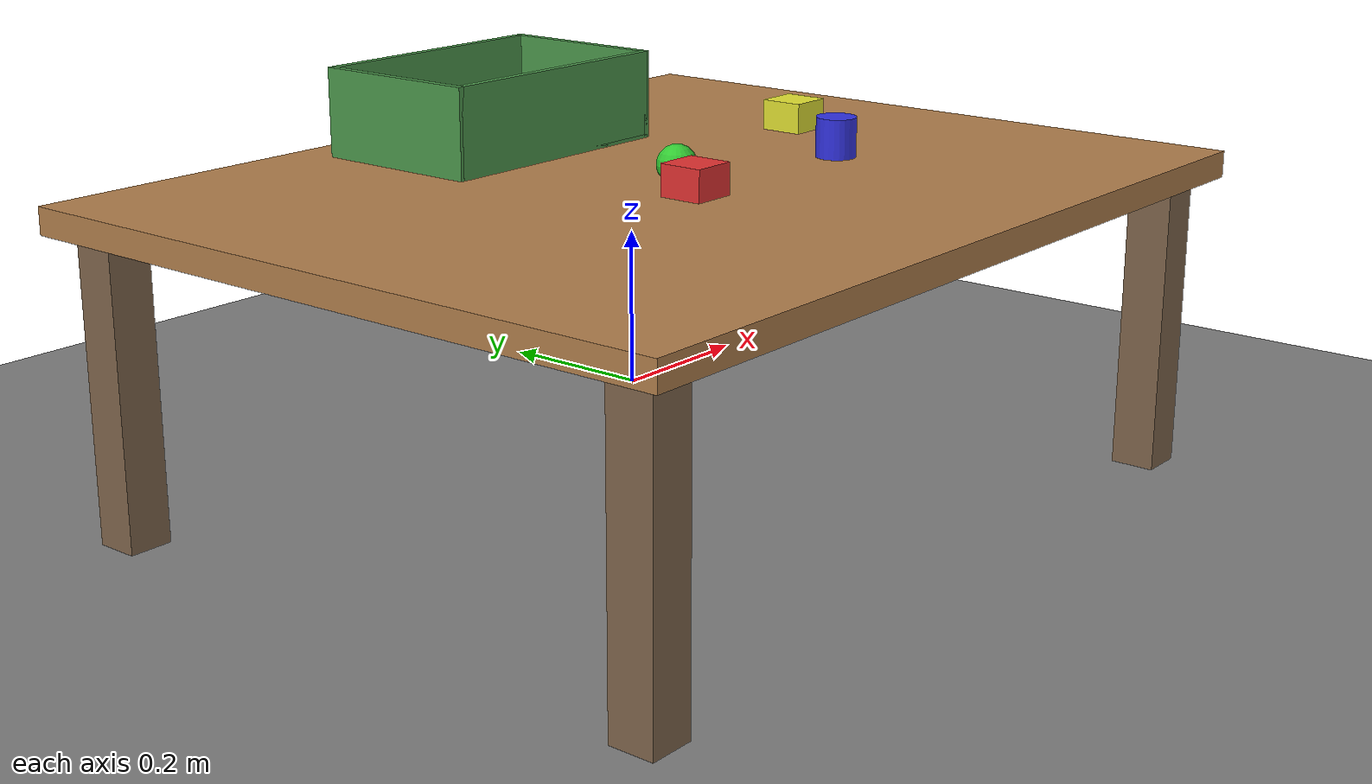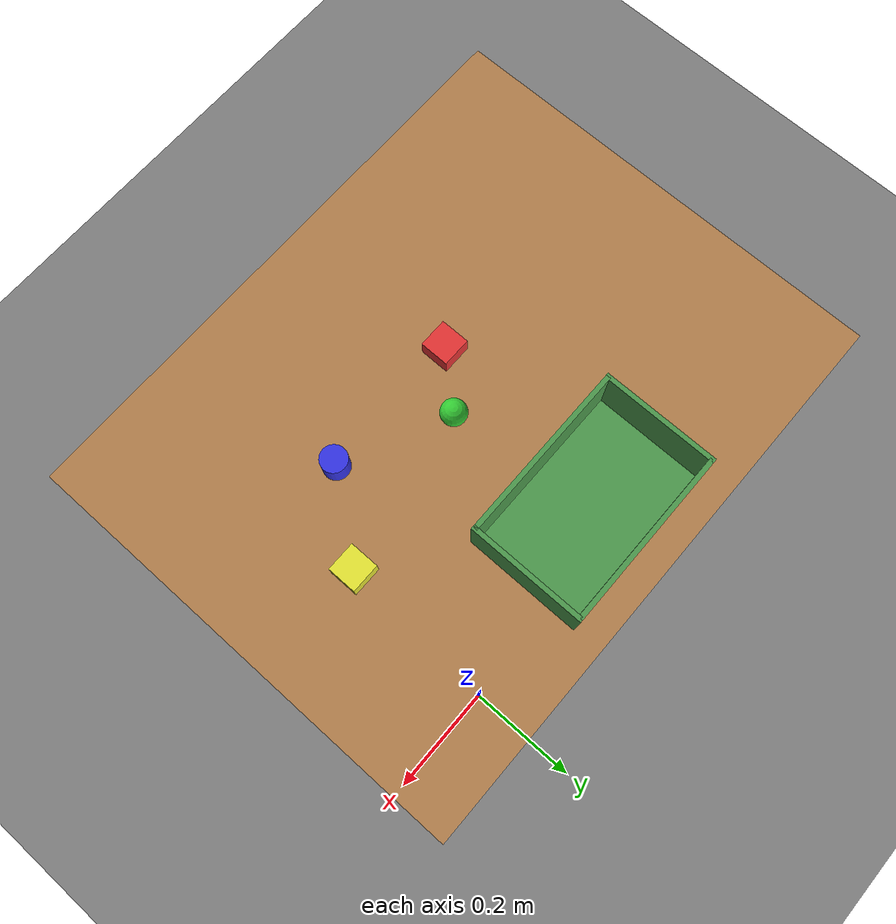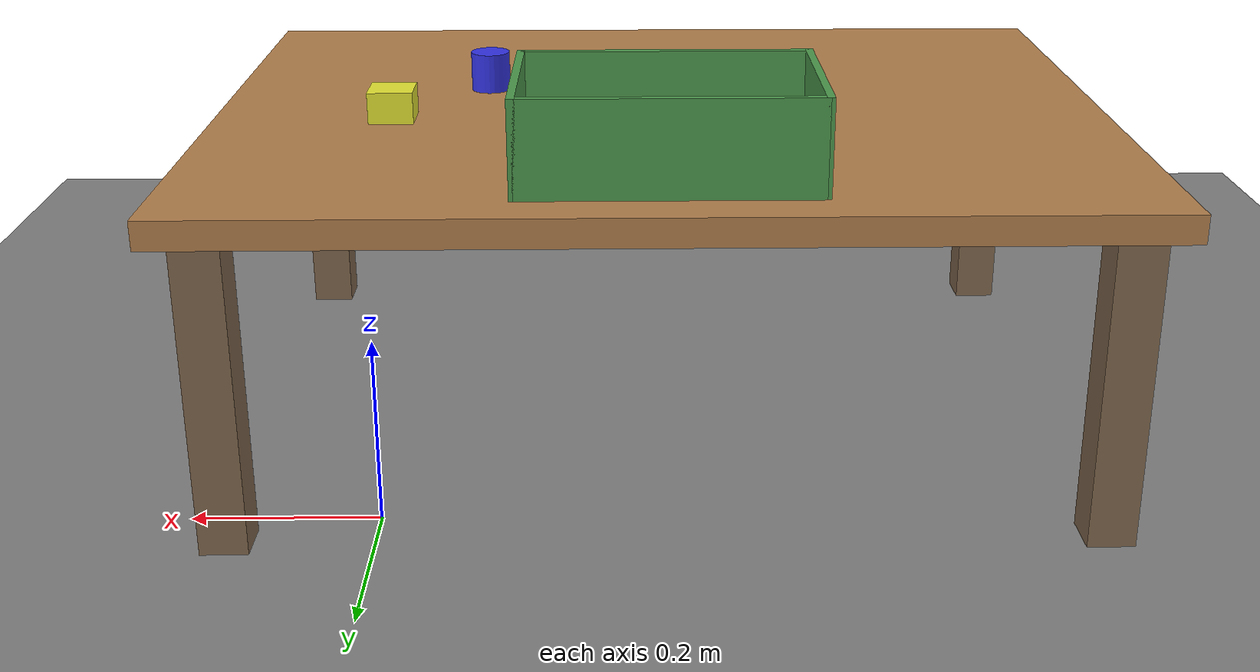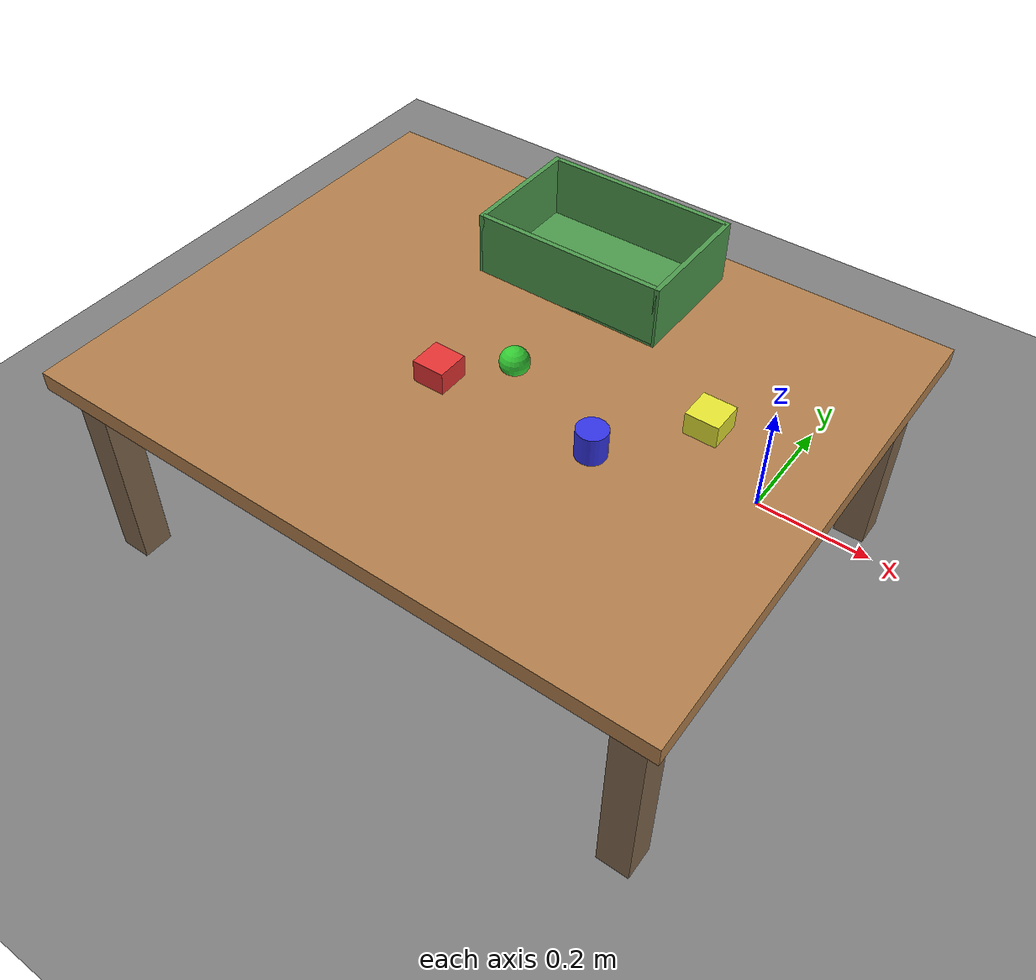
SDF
<?xml version="1.0" ?>
<sdf version="1.6">
  <world name="pick_and_place">

    <!-- Physics settings optimized for manipulation -->
    <physics name="2ms" type="ignored">
      <max_step_size>0.001</max_step_size>
      <real_time_factor>1.0</real_time_factor>
      <real_time_update_rate>1000</real_time_update_rate>
    </physics>

    <!-- Required Gazebo plugins -->
    <plugin
      filename="gz-sim-physics-system"
      name="gz::sim::systems::Physics">
    </plugin>
    <plugin
      filename="gz-sim-user-commands-system"
      name="gz::sim::systems::UserCommands">
    </plugin>
    <plugin
      filename="gz-sim-scene-broadcaster-system"
      name="gz::sim::systems::SceneBroadcaster">
    </plugin>
    <plugin
      filename="gz-sim-contact-system"
      name="gz::sim::systems::Contact">
    </plugin>
    <plugin
      filename="gz-sim-sensors-system"
      name="gz::sim::systems::Sensors">
      <render_engine>ogre2</render_engine>
    </plugin>

    <!-- Sunlight -->
    <light type="directional" name="sun">
      <cast_shadows>true</cast_shadows>
      <pose>0 0 10 0 0 0</pose>
      <diffuse>0.9 0.9 0.9 1</diffuse>
      <specular>0.3 0.3 0.3 1</specular>
      <attenuation>
        <range>1000</range>
        <constant>0.9</constant>
        <linear>0.01</linear>
        <quadratic>0.001</quadratic>
      </attenuation>
      <direction>-0.5 0.1 -0.9</direction>
    </light>

    <!-- Ambient light for better visibility -->
    <light type="directional" name="fill_light">
      <cast_shadows>false</cast_shadows>
      <pose>0 0 8 0 0 0</pose>
      <diffuse>0.4 0.4 0.4 1</diffuse>
      <specular>0.1 0.1 0.1 1</specular>
      <direction>0.5 -0.3 -0.8</direction>
    </light>

    <!-- Ground plane -->
    <model name="ground_plane">
      <static>true</static>
      <link name="link">
        <collision name="collision">
          <geometry>
            <plane>
              <normal>0 0 1</normal>
              <size>100 100</size>
            </plane>
          </geometry>
          <surface>
            <friction>
              <ode>
                <mu>1.0</mu>
                <mu2>1.0</mu2>
              </ode>
            </friction>
          </surface>
        </collision>
        <visual name="visual">
          <geometry>
            <plane>
              <normal>0 0 1</normal>
              <size>100 100</size>
            </plane>
          </geometry>
          <material>
            <ambient>0.3 0.3 0.3 1</ambient>
            <diffuse>0.5 0.5 0.5 1</diffuse>
            <specular>0.2 0.2 0.2 1</specular>
          </material>
        </visual>
      </link>
    </model>

    <!-- WORKSPACE TABLE - Larger: 1.0m x 0.8m         -->
    <!-- Centered at x=0.45 in front of robot          -->
    <!-- Table top at world z=0.35 (robot z=0.05)      -->
    <model name="workspace_table">
      <static>true</static>
      <pose>-0.30 -0.30 0 0 0 0</pose>
      <link name="table_link">
        <!-- Table top - LARGER: 1.0m x 0.8m -->
        <collision name="table_top_collision">
          <pose>0 0 0.35 0 0 0</pose>
          <geometry>
            <box>
              <size>1.0 0.8 0.03</size>
            </box>
          </geometry>
          <surface>
            <friction>
              <ode>
                <mu>0.8</mu>
                <mu2>0.8</mu2>
              </ode>
            </friction>
          </surface>
        </collision>
        <visual name="table_top_visual">
          <pose>0 0 0.35 0 0 0</pose>
          <geometry>
            <box>
              <size>1.0 0.8 0.03</size>
            </box>
          </geometry>
          <material>
            <ambient>0.6 0.4 0.2 1</ambient>
            <diffuse>0.7 0.5 0.3 1</diffuse>
            <specular>0.2 0.2 0.2 1</specular>
          </material>
        </visual>
        <!-- Table legs - adjusted for larger table -->
        <collision name="leg1_collision">
          <pose>0.45 0.35 0.17 0 0 0</pose>
          <geometry>
            <box><size>0.05 0.05 0.34</size></box>
          </geometry>
        </collision>
        <visual name="leg1_visual">
          <pose>0.45 0.35 0.17 0 0 0</pose>
          <geometry>
            <box><size>0.05 0.05 0.34</size></box>
          </geometry>
          <material>
            <ambient>0.4 0.3 0.2 1</ambient>
            <diffuse>0.5 0.4 0.3 1</diffuse>
          </material>
        </visual>
        <collision name="leg2_collision">
          <pose>0.45 -0.35 0.17 0 0 0</pose>
          <geometry>
            <box><size>0.05 0.05 0.34</size></box>
          </geometry>
        </collision>
        <visual name="leg2_visual">
          <pose>0.45 -0.35 0.17 0 0 0</pose>
          <geometry>
            <box><size>0.05 0.05 0.34</size></box>
          </geometry>
          <material>
            <ambient>0.4 0.3 0.2 1</ambient>
            <diffuse>0.5 0.4 0.3 1</diffuse>
          </material>
        </visual>
        <collision name="leg3_collision">
          <pose>-0.45 0.35 0.17 0 0 0</pose>
          <geometry>
            <box><size>0.05 0.05 0.34</size></box>
          </geometry>
        </collision>
        <visual name="leg3_visual">
          <pose>-0.45 0.35 0.17 0 0 0</pose>
          <geometry>
            <box><size>0.05 0.05 0.34</size></box>
          </geometry>
          <material>
            <ambient>0.4 0.3 0.2 1</ambient>
            <diffuse>0.5 0.4 0.3 1</diffuse>
          </material>
        </visual>
        <collision name="leg4_collision">
          <pose>-0.45 -0.35 0.17 0 0 0</pose>
          <geometry>
            <box><size>0.05 0.05 0.34</size></box>
          </geometry>
        </collision>
        <visual name="leg4_visual">
          <pose>-0.45 -0.35 0.17 0 0 0</pose>
          <geometry>
            <box><size>0.05 0.05 0.34</size></box>
          </geometry>
          <material>
            <ambient>0.4 0.3 0.2 1</ambient>
            <diffuse>0.5 0.4 0.3 1</diffuse>
          </material>
        </visual>
      </link>
    </model>

    <!-- BASKET - Larger: 30cm x 20cm x 10cm high      -->
    <!-- World position: (-0.30, -0.05, 0.365)           -->
    <!-- Robot frame: (-0.30, -0.05, 0.0)                -->
    <model name="basket">
      <static>true</static>
      <pose>-0.30 -0.05 0.365 0 0 0</pose>
      <link name="basket_link">
        <!-- Bottom -->
        <collision name="bottom_collision">
          <pose>0 0 0 0 0 0</pose>
          <geometry>
            <box><size>0.30 0.20 0.008</size></box>
          </geometry>
        </collision>
        <visual name="bottom_visual">
          <pose>0 0 0 0 0 0</pose>
          <geometry>
            <box><size>0.30 0.20 0.008</size></box>
          </geometry>
          <material>
            <ambient>0.2 0.4 0.2 1</ambient>
            <diffuse>0.3 0.6 0.3 1</diffuse>
          </material>
        </visual>
        <!-- Front wall -->
        <collision name="front_collision">
          <pose>0.15 0 0.05 0 0 0</pose>
          <geometry>
            <box><size>0.008 0.20 0.10</size></box>
          </geometry>
        </collision>
        <visual name="front_visual">
          <pose>0.15 0 0.05 0 0 0</pose>
          <geometry>
            <box><size>0.008 0.20 0.10</size></box>
          </geometry>
          <material>
            <ambient>0.2 0.4 0.2 1</ambient>
            <diffuse>0.3 0.6 0.3 1</diffuse>
          </material>
        </visual>
        <!-- Back wall -->
        <collision name="back_collision">
          <pose>-0.15 0 0.08 0 0 0</pose>
          <geometry>
            <box><size>0.008 0.20 0.10</size></box>
          </geometry>
        </collision>
        <visual name="back_visual">
          <pose>-0.15 0 0.05 0 0 0</pose>
          <geometry>
            <box><size>0.008 0.20 0.10</size></box>
          </geometry>
          <material>
            <ambient>0.2 0.4 0.2 1</ambient>
            <diffuse>0.3 0.6 0.3 1</diffuse>
          </material>
        </visual>
        <!-- Left wall -->
        <collision name="left_collision">
          <pose>0 0.096 0.05 0 0 0</pose>
          <geometry>
            <box><size>0.3 0.008 0.10</size></box>
          </geometry>
        </collision>
        <visual name="left_visual">
          <pose>0 0.096 0.05 0 0 0</pose>
          <geometry>
            <box><size>0.3 0.008 0.10</size></box>
          </geometry>
          <material>
            <ambient>0.2 0.4 0.2 1</ambient>
            <diffuse>0.3 0.6 0.3 1</diffuse>
          </material>
        </visual>
        <!-- Right wall -->
        <collision name="right_collision">
          <pose>0 -0.096 0.05 0 0 0</pose>
          <geometry>
            <box><size>0.30 0.008 0.10</size></box>
          </geometry>
        </collision>
        <visual name="right_visual">
          <pose>0 -0.096 0.05 0 0 0</pose>
          <geometry>
            <box><size>0.30 0.008 0.10</size></box>
          </geometry>
          <material>
            <ambient>0.2 0.4 0.2 1</ambient>
            <diffuse>0.3 0.6 0.3 1</diffuse>
          </material>
        </visual>
      </link>
    </model>

    <!-- PICK STATION 1: RED CUBE - 50mm               -->
    <!-- World position: (-0.35, -0.38, 0.375)          -->
    <!-- Robot frame: (-0.35, -0.38, 0.01)              -->
    <!-- Table z=0.35 + half_cube(0.025) = 0.375       -->
    <model name="red_cube">
      <pose>-0.35 -0.38 0.375 0 0 0</pose>
      <link name="link">
        <inertial>
          <mass>0.08</mass>
          <inertia>
            <ixx>3.33e-5</ixx>
            <ixy>0</ixy>
            <ixz>0</ixz>
            <iyy>3.33e-5</iyy>
            <iyz>0</iyz>
            <izz>3.33e-5</izz>
          </inertia>
        </inertial>
        <collision name="collision">
          <geometry>
            <!-- Collision smaller than visual to allow gripper to close -->
            <box><size>0.03 0.03 0.05</size></box>
          </geometry>
          <surface>
            <friction>
              <ode>
                <mu>1.0</mu>
                <mu2>1.0</mu2>
              </ode>
            </friction>
            <contact>
              <ode>
                <kp>1e6</kp>
                <kd>100</kd>
              </ode>
            </contact>
          </surface>
        </collision>
        <visual name="visual">
          <geometry>
            <box><size>0.05 0.05 0.05</size></box>
          </geometry>
          <material>
            <ambient>0.8 0.1 0.1 1</ambient>
            <diffuse>0.9 0.2 0.2 1</diffuse>
            <specular>0.5 0.5 0.5 1</specular>
          </material>
        </visual>
      </link>
      <!-- Allow gripper fingers to overlap with object for grasping -->
      <disable_collision>
        <link1>red_cube::link</link1>
        <link2>gen3_lite::right_finger_prox_link</link2>
      </disable_collision>
      <disable_collision>
        <link1>red_cube::link</link1>
        <link2>gen3_lite::right_finger_dist_link</link2>
      </disable_collision>
      <disable_collision>
        <link1>red_cube::link</link1>
        <link2>gen3_lite::left_finger_prox_link</link2>
      </disable_collision>
      <disable_collision>
        <link1>red_cube::link</link1>
        <link2>gen3_lite::left_finger_dist_link</link2>
      </disable_collision>
    </model>

    <!-- PICK STATION 2: BLUE CYLINDER - 45mm dia      -->
    <!-- World position: (-0.10, -0.38, 0.38)           -->
    <!-- Robot frame: (-0.10, -0.38, 0.015)            -->
    <!-- Table z=0.35 + half_height(0.03) = 0.38      -->
    <model name="blue_cylinder">
      <pose>-0.10 -0.38 0.38 0 0 0</pose>
      <link name="link">
        <inertial>
          <mass>0.06</mass>
          <inertia>
            <ixx>2.5e-5</ixx>
            <ixy>0</ixy>
            <ixz>0</ixz>
            <iyy>2.5e-5</iyy>
            <iyz>0</iyz>
            <izz>1.1e-5</izz>
          </inertia>
        </inertial>
        <collision name="collision">
          <geometry>
            <cylinder>
              <radius>0.015</radius>
              <length>0.06</length>
            </cylinder>
          </geometry>
          <surface>
            <friction>
              <ode>
                <mu>1.0</mu>
                <mu2>1.0</mu2>
              </ode>
            </friction>
            <contact>
              <ode>
                <kp>1e6</kp>
                <kd>100</kd>
              </ode>
            </contact>
          </surface>
        </collision>
        <visual name="visual">
          <geometry>
            <cylinder>
              <radius>0.0225</radius>
              <length>0.06</length>
            </cylinder>
          </geometry>
          <material>
            <ambient>0.1 0.1 0.8 1</ambient>
            <diffuse>0.2 0.2 0.9 1</diffuse>
            <specular>0.5 0.5 0.5 1</specular>
          </material>
        </visual>
      </link>
      <!-- Allow gripper fingers to overlap with object for grasping -->
      <disable_collision>
        <link1>blue_cylinder::link</link1>
        <link2>gen3_lite::right_finger_prox_link</link2>
      </disable_collision>
      <disable_collision>
        <link1>blue_cylinder::link</link1>
        <link2>gen3_lite::right_finger_dist_link</link2>
      </disable_collision>
      <disable_collision>
        <link1>blue_cylinder::link</link1>
        <link2>gen3_lite::left_finger_prox_link</link2>
      </disable_collision>
      <disable_collision>
        <link1>blue_cylinder::link</link1>
        <link2>gen3_lite::left_finger_dist_link</link2>
      </disable_collision>
    </model>

    <!-- PICK STATION 3: GREEN SPHERE - 50mm dia       -->
    <!-- World position: (-0.28, -0.30, 0.375)          -->
    <!-- Robot frame: (-0.28, -0.30, 0.01)              -->
    <!-- Table z=0.35 + radius(0.025) = 0.375          -->
    <model name="green_sphere">
      <pose>-0.28 -0.30 0.375 0 0 0</pose>
      <link name="link">
        <inertial>
          <mass>0.05</mass>
          <inertia>
            <ixx>1.25e-5</ixx>
            <ixy>0</ixy>
            <ixz>0</ixz>
            <iyy>1.25e-5</iyy>
            <iyz>0</iyz>
            <izz>1.25e-5</izz>
          </inertia>
        </inertial>
        <collision name="collision">
          <geometry>
            <sphere><radius>0.0225</radius></sphere>
          </geometry>
          <surface>
            <friction>
              <ode>
                <mu>1.2</mu>
                <mu2>1.2</mu2>
              </ode>
            </friction>
            <contact>
              <ode>
                <kp>1e6</kp>
                <kd>100</kd>
              </ode>
            </contact>
          </surface>
        </collision>
        <visual name="visual">
          <geometry>
            <sphere><radius>0.0225</radius></sphere>
          </geometry>
          <material>
            <ambient>0.1 0.6 0.1 1</ambient>
            <diffuse>0.2 0.8 0.2 1</diffuse>
            <specular>0.5 0.5 0.5 1</specular>
          </material>
        </visual>
      </link>
      <!-- Allow gripper fingers to overlap with object for grasping -->
      <disable_collision>
        <link1>green_sphere::link</link1>
        <link2>gen3_lite::right_finger_prox_link</link2>
      </disable_collision>
      <disable_collision>
        <link1>green_sphere::link</link1>
        <link2>gen3_lite::right_finger_dist_link</link2>
      </disable_collision>
      <disable_collision>
        <link1>green_sphere::link</link1>
        <link2>gen3_lite::left_finger_prox_link</link2>
      </disable_collision>
      <disable_collision>
        <link1>green_sphere::link</link1>
        <link2>gen3_lite::left_finger_dist_link</link2>
      </disable_collision>
    </model>

    <!-- PICK STATION 4: YELLOW CUBE - 50mm            -->
    <!-- World position: (0.0, -0.25, 0.375)            -->
    <!-- Robot frame: (0.0, -0.25, 0.01)                -->
    <!-- Table z=0.35 + half_cube(0.025) = 0.375       -->
    <model name="yellow_cube">
      <pose>0.0 -0.25 0.375 0 0 0</pose>
      <link name="link">
        <inertial>
          <mass>0.08</mass>
          <inertia>
            <ixx>3.33e-5</ixx>
            <ixy>0</ixy>
            <ixz>0</ixz>
            <iyy>3.33e-5</iyy>
            <iyz>0</iyz>
            <izz>3.33e-5</izz>
          </inertia>
        </inertial>
        <collision name="collision">
          <geometry>
            <!-- Collision smaller than visual to allow gripper to close -->
            <box><size>0.035 0.035 0.05</size></box>
          </geometry>
          <surface>
            <friction>
              <ode>
                <mu>1.0</mu>
                <mu2>1.0</mu2>
              </ode>
            </friction>
            <contact>
              <ode>
                <kp>1e6</kp>
                <kd>100</kd>
              </ode>
            </contact>
          </surface>
        </collision>
        <visual name="visual">
          <geometry>
            <box><size>0.05 0.05 0.05</size></box>
          </geometry>
          <material>
            <ambient>0.8 0.8 0.1 1</ambient>
            <diffuse>0.9 0.9 0.2 1</diffuse>
            <specular>0.5 0.5 0.5 1</specular>
          </material>
        </visual>
      </link>
    </model>

  </world>
</sdf>
